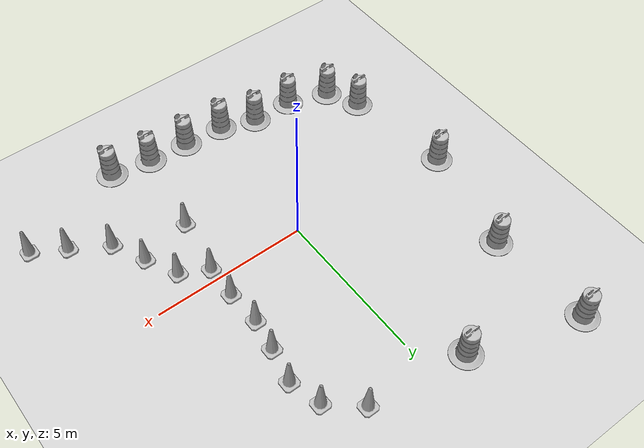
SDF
<sdf version="1.7">
 <world name="default">
  <light name="sun" type="directional">
   <pose>0 0 10 0 -0 0</pose>
   <diffuse>0.8 0.8 0.8 1</diffuse>
   <specular>0.2 0.2 0.2 1</specular>
   <attenuation>
    <range>1000</range>
    <constant>0.9</constant>
    <linear>0.01</linear>
    <quadratic>0.001</quadratic>
   </attenuation>
   <direction>-0.5 0.1 -0.9</direction>
   <spot><inner_angle>0</inner_angle><outer_angle>0</outer_angle><falloff>0</falloff></spot>
  </light>
  <model name="ground_plane">
   <static>1</static>
   <link name="link">
    <collision name="collision">
     <geometry><plane><normal>0 0 1</normal><size>100 100</size></plane></geometry>
     <surface><friction><ode><mu>100</mu><mu2>50</mu2></ode></friction></surface>
    </collision>
    <visual name="visual">
     <cast_shadows>0</cast_shadows>
     <geometry><plane><normal>0 0 1</normal><size>100 100</size></plane></geometry>
     <material>
      <script><uri>file://media/materials/scripts/gazebo.material</uri><name>Gazebo/Grey</name></script>
     </material>
    </visual>
   </link>
  </model>
  <gravity>0 0 -9.8</gravity>
  <magnetic_field>6e-06 2.3e-05 -4.2e-05</magnetic_field>
  <atmosphere type="adiabatic"/>
  <physics type="ode">
   <max_step_size>0.001</max_step_size>
   <real_time_factor>1</real_time_factor>
   <real_time_update_rate>1000</real_time_update_rate>
  </physics>
  <scene><ambient>0.4 0.4 0.4 1</ambient><background>0.7 0.7 0.7 1</background><shadows>1</shadows></scene>
  <audio><device>default</device></audio>
  <spherical_coordinates>
   <surface_model>EARTH_WGS84</surface_model>
   <latitude_deg>0</latitude_deg>
   <longitude_deg>0</longitude_deg>
   <elevation>0</elevation>
   <heading_deg>0</heading_deg>
  </spherical_coordinates>
  <model name="Construction Barrel">
   <link name="link">
    <inertial>
     <pose>0 0 0.4 0 -0 0</pose>
     <mass>500</mass>
     <inertia><ixx>51.2096</ixx><iyy>51.2096</iyy><izz>25</izz><ixy>0</ixy><ixz>0</ixz><iyz>0</iyz></inertia>
    </inertial>
    <collision name="collision">
     <geometry><mesh><uri>model://construction_barrel/meshes/construction_barrel.dae</uri></mesh></geometry>
    </collision>
    <visual name="visual">
     <geometry><mesh><uri>model://construction_barrel/meshes/construction_barrel.dae</uri></mesh></geometry>
    </visual>
   </link>
   <pose>-5.33773 0.426072 -3e-06 -6e-06 -5e-06 -3.6e-05</pose>
  </model>
  <model name="Construction Barrel_clone">
   <link name="link">
    <inertial>
     <pose>0 0 0.4 0 -0 0</pose>
     <mass>500</mass>
     <inertia><ixx>51.2096</ixx><iyy>51.2096</iyy><izz>25</izz><ixy>0</ixy><ixz>0</ixz><iyz>0</iyz></inertia>
    </inertial>
    <collision name="collision">
     <geometry><mesh><uri>model://construction_barrel/meshes/construction_barrel.dae</uri></mesh></geometry>
    </collision>
    <visual name="visual">
     <geometry><mesh><uri>model://construction_barrel/meshes/construction_barrel.dae</uri></mesh></geometry>
    </visual>
   </link>
   <pose>-4.52757 3.99995 -3e-06 -6e-06 -5e-06 -3.1e-05</pose>
  </model>
  <model name="Construction Barrel_clone_0">
   <link name="link">
    <inertial>
     <pose>0 0 0.4 0 -0 0</pose>
     <mass>500</mass>
     <inertia><ixx>51.2096</ixx><iyy>51.2096</iyy><izz>25</izz><ixy>0</ixy><ixz>0</ixz><iyz>0</iyz></inertia>
    </inertial>
    <collision name="collision">
     <geometry><mesh><uri>model://construction_barrel/meshes/construction_barrel.dae</uri></mesh></geometry>
    </collision>
    <visual name="visual">
     <geometry><mesh><uri>model://construction_barrel/meshes/construction_barrel.dae</uri></mesh></geometry>
    </visual>
   </link>
   <pose>-1.16073 6.2419 -3e-06 -6e-06 -5e-06 -3.6e-05</pose>
  </model>
  <model name="Construction Barrel_clone_1">
   <link name="link">
    <inertial>
     <pose>0 0 0.4 0 -0 0</pose>
     <mass>500</mass>
     <inertia><ixx>51.2096</ixx><iyy>51.2096</iyy><izz>25</izz><ixy>0</ixy><ixz>0</ixz><iyz>0</iyz></inertia>
    </inertial>
    <collision name="collision">
     <geometry><mesh><uri>model://construction_barrel/meshes/construction_barrel.dae</uri></mesh></geometry>
    </collision>
    <visual name="visual">
     <geometry><mesh><uri>model://construction_barrel/meshes/construction_barrel.dae</uri></mesh></geometry>
    </visual>
   </link>
   <pose>-4.66153 7.3693 0 0 0 -2.9e-05</pose>
  </model>
  <model name="Construction Cone">
   <link name="link">
    <collision name="collision">
     <geometry>
      <mesh><scale>10 10 10</scale><uri>model://construction_cone/meshes/construction_cone.dae</uri></mesh>
     </geometry>
    </collision>
    <visual name="visual">
     <geometry>
      <mesh><scale>10 10 10</scale><uri>model://construction_cone/meshes/construction_cone.dae</uri></mesh>
     </geometry>
    </visual>
    <inertial>
     <inertia><ixx>1</ixx><ixy>0</ixy><ixz>0</ixz><iyy>1</iyy><iyz>0</iyz><izz>1</izz></inertia>
     <mass>1</mass>
    </inertial>
   </link>
   <pose>2.63502 -2.26333 -0 0 -0 0</pose>
  </model>
  <model name="Construction Cone_clone">
   <link name="link">
    <collision name="collision">
     <geometry>
      <mesh><scale>10 10 10</scale><uri>model://construction_cone/meshes/construction_cone.dae</uri></mesh>
     </geometry>
    </collision>
    <visual name="visual">
     <geometry>
      <mesh><scale>10 10 10</scale><uri>model://construction_cone/meshes/construction_cone.dae</uri></mesh>
     </geometry>
    </visual>
    <inertial>
     <inertia><ixx>1</ixx><ixy>0</ixy><ixz>0</ixz><iyy>1</iyy><iyz>0</iyz><izz>1</izz></inertia>
     <mass>1</mass>
    </inertial>
   </link>
   <pose>2.93178 -0.389019 -0 -0 -0 -0</pose>
  </model>
  <model name="Construction Cone_clone_0">
   <link name="link">
    <collision name="collision">
     <geometry>
      <mesh><scale>10 10 10</scale><uri>model://construction_cone/meshes/construction_cone.dae</uri></mesh>
     </geometry>
    </collision>
    <visual name="visual">
     <geometry>
      <mesh><scale>10 10 10</scale><uri>model://construction_cone/meshes/construction_cone.dae</uri></mesh>
     </geometry>
    </visual>
    <inertial>
     <inertia><ixx>1</ixx><ixy>0</ixy><ixz>0</ixz><iyy>1</iyy><iyz>0</iyz><izz>1</izz></inertia>
     <mass>1</mass>
    </inertial>
   </link>
   <pose>2.90376 1.85673 -0 0 -0 0</pose>
  </model>
  <model name="Construction Cone_clone_1">
   <link name="link">
    <collision name="collision">
     <geometry>
      <mesh><scale>10 10 10</scale><uri>model://construction_cone/meshes/construction_cone.dae</uri></mesh>
     </geometry>
    </collision>
    <visual name="visual">
     <geometry>
      <mesh><scale>10 10 10</scale><uri>model://construction_cone/meshes/construction_cone.dae</uri></mesh>
     </geometry>
    </visual>
    <inertial>
     <inertia><ixx>1</ixx><ixy>0</ixy><ixz>0</ixz><iyy>1</iyy><iyz>0</iyz><izz>1</izz></inertia>
     <mass>1</mass>
    </inertial>
   </link>
   <pose>3.28591 3.98359 -0 0 -0 0</pose>
  </model>
  <model name="Construction Barrel_clone_2">
   <link name="link">
    <inertial>
     <pose>0 0 0.4 0 -0 0</pose>
     <mass>500</mass>
     <inertia><ixx>51.2096</ixx><iyy>51.2096</iyy><izz>25</izz><ixy>0</ixy><ixz>0</ixz><iyz>0</iyz></inertia>
    </inertial>
    <collision name="collision">
     <geometry><mesh><uri>model://construction_barrel/meshes/construction_barrel.dae</uri></mesh></geometry>
    </collision>
    <visual name="visual">
     <geometry><mesh><uri>model://construction_barrel/meshes/construction_barrel.dae</uri></mesh></geometry>
    </visual>
   </link>
   <pose>-4.32472 -4.1141 -2e-06 7e-06 -4e-06 -2.8e-05</pose>
  </model>
  <model name="Construction Barrel_clone_3">
   <link name="link">
    <inertial>
     <pose>0 0 0.4 0 -0 0</pose>
     <mass>500</mass>
     <inertia><ixx>51.2096</ixx><iyy>51.2096</iyy><izz>25</izz><ixy>0</ixy><ixz>0</ixz><iyz>0</iyz></inertia>
    </inertial>
    <collision name="collision">
     <geometry><mesh><uri>model://construction_barrel/meshes/construction_barrel.dae</uri></mesh></geometry>
    </collision>
    <visual name="visual">
     <geometry><mesh><uri>model://construction_barrel/meshes/construction_barrel.dae</uri></mesh></geometry>
    </visual>
   </link>
   <pose>-1.63254 -4.58664 -1e-06 4e-06 -1e-06 -3.3e-05</pose>
  </model>
  <model name="Construction Barrel_clone_4">
   <link name="link">
    <inertial>
     <pose>0 0 0.4 0 -0 0</pose>
     <mass>500</mass>
     <inertia><ixx>51.2096</ixx><iyy>51.2096</iyy><izz>25</izz><ixy>0</ixy><ixz>0</ixz><iyz>0</iyz></inertia>
    </inertial>
    <collision name="collision">
     <geometry><mesh><uri>model://construction_barrel/meshes/construction_barrel.dae</uri></mesh></geometry>
    </collision>
    <visual name="visual">
     <geometry><mesh><uri>model://construction_barrel/meshes/construction_barrel.dae</uri></mesh></geometry>
    </visual>
   </link>
   <pose>0.824505 -5.07221 -2e-06 7e-06 -4e-06 -2.9e-05</pose>
  </model>
  <model name="Construction Barrel_clone_2_clone">
   <link name="link">
    <inertial>
     <pose>0 0 0.4 0 -0 0</pose>
     <mass>500</mass>
     <inertia><ixx>51.2096</ixx><iyy>51.2096</iyy><izz>25</izz><ixy>0</ixy><ixz>0</ixz><iyz>0</iyz></inertia>
    </inertial>
    <collision name="collision">
     <geometry><mesh><uri>model://construction_barrel/meshes/construction_barrel.dae</uri></mesh></geometry>
    </collision>
    <visual name="visual">
     <geometry><mesh><uri>model://construction_barrel/meshes/construction_barrel.dae</uri></mesh></geometry>
    </visual>
   </link>
   <pose>-2.98353 -4.55397 -2e-06 7e-06 -2e-06 -3.8e-05</pose>
  </model>
  <model name="Construction Barrel_clone_2_clone_0">
   <link name="link">
    <inertial>
     <pose>0 0 0.4 0 -0 0</pose>
     <mass>500</mass>
     <inertia><ixx>51.2096</ixx><iyy>51.2096</iyy><izz>25</izz><ixy>0</ixy><ixz>0</ixz><iyz>0</iyz></inertia>
    </inertial>
    <collision name="collision">
     <geometry><mesh><uri>model://construction_barrel/meshes/construction_barrel.dae</uri></mesh></geometry>
    </collision>
    <visual name="visual">
     <geometry><mesh><uri>model://construction_barrel/meshes/construction_barrel.dae</uri></mesh></geometry>
    </visual>
   </link>
   <pose>-0.50047 -4.97564 -2e-06 7e-06 -2e-06 -3.7e-05</pose>
  </model>
  <model name="Construction Barrel_clone_2_clone_1">
   <link name="link">
    <inertial>
     <pose>0 0 0.4 0 -0 0</pose>
     <mass>500</mass>
     <inertia><ixx>51.2096</ixx><iyy>51.2096</iyy><izz>25</izz><ixy>0</ixy><ixz>0</ixz><iyz>0</iyz></inertia>
    </inertial>
    <collision name="collision">
     <geometry><mesh><uri>model://construction_barrel/meshes/construction_barrel.dae</uri></mesh></geometry>
    </collision>
    <visual name="visual">
     <geometry><mesh><uri>model://construction_barrel/meshes/construction_barrel.dae</uri></mesh></geometry>
    </visual>
   </link>
   <pose>2.12865 -5.16749 -2e-06 7e-06 -2e-06 -3.6e-05</pose>
  </model>
  <model name="Construction Barrel_clone_2_clone_2">
   <link name="link">
    <inertial>
     <pose>0 0 0.4 0 -0 0</pose>
     <mass>500</mass>
     <inertia><ixx>51.2096</ixx><iyy>51.2096</iyy><izz>25</izz><ixy>0</ixy><ixz>0</ixz><iyz>0</iyz></inertia>
    </inertial>
    <collision name="collision">
     <geometry><mesh><uri>model://construction_barrel/meshes/construction_barrel.dae</uri></mesh></geometry>
    </collision>
    <visual name="visual">
     <geometry><mesh><uri>model://construction_barrel/meshes/construction_barrel.dae</uri></mesh></geometry>
    </visual>
   </link>
   <pose>-4.84292 -3.07001 -2e-06 7e-06 -2e-06 -3.5e-05</pose>
  </model>
  <model name="Construction Barrel_clone_2_clone_3">
   <link name="link">
    <inertial>
     <pose>0 0 0.4 0 -0 0</pose>
     <mass>500</mass>
     <inertia><ixx>51.2096</ixx><iyy>51.2096</iyy><izz>25</izz><ixy>0</ixy><ixz>0</ixz><iyz>0</iyz></inertia>
    </inertial>
    <collision name="collision">
     <geometry><mesh><uri>model://construction_barrel/meshes/construction_barrel.dae</uri></mesh></geometry>
    </collision>
    <visual name="visual">
     <geometry><mesh><uri>model://construction_barrel/meshes/construction_barrel.dae</uri></mesh></geometry>
    </visual>
   </link>
   <pose>3.43774 -5.39397 -0 0 0 -3.5e-05</pose>
  </model>
  <model name="Construction Cone_clone_2">
   <link name="link">
    <collision name="collision">
     <geometry>
      <mesh><scale>10 10 10</scale><uri>model://construction_cone/meshes/construction_cone.dae</uri></mesh>
     </geometry>
    </collision>
    <visual name="visual">
     <geometry>
      <mesh><scale>10 10 10</scale><uri>model://construction_cone/meshes/construction_cone.dae</uri></mesh>
     </geometry>
    </visual>
    <inertial>
     <inertia><ixx>1</ixx><ixy>0</ixy><ixz>0</ixz><iyy>1</iyy><iyz>0</iyz><izz>1</izz></inertia>
     <mass>1</mass>
    </inertial>
   </link>
   <pose>2.9612 0.699633 0 -0 -0 -0</pose>
  </model>
  <model name="Construction Cone_clone_3">
   <link name="link">
    <collision name="collision">
     <geometry>
      <mesh><scale>10 10 10</scale><uri>model://construction_cone/meshes/construction_cone.dae</uri></mesh>
     </geometry>
    </collision>
    <visual name="visual">
     <geometry>
      <mesh><scale>10 10 10</scale><uri>model://construction_cone/meshes/construction_cone.dae</uri></mesh>
     </geometry>
    </visual>
    <inertial>
     <inertia><ixx>1</ixx><ixy>0</ixy><ixz>0</ixz><iyy>1</iyy><iyz>0</iyz><izz>1</izz></inertia>
     <mass>1</mass>
    </inertial>
   </link>
   <pose>3.06339 2.87489 -0 0 -1e-06 0</pose>
  </model>
  <model name="Construction Cone_clone_4">
   <link name="link">
    <collision name="collision">
     <geometry>
      <mesh><scale>10 10 10</scale><uri>model://construction_cone/meshes/construction_cone.dae</uri></mesh>
     </geometry>
    </collision>
    <visual name="visual">
     <geometry>
      <mesh><scale>10 10 10</scale><uri>model://construction_cone/meshes/construction_cone.dae</uri></mesh>
     </geometry>
    </visual>
    <inertial>
     <inertia><ixx>1</ixx><ixy>0</ixy><ixz>0</ixz><iyy>1</iyy><iyz>0</iyz><izz>1</izz></inertia>
     <mass>1</mass>
    </inertial>
   </link>
   <pose>3.8023 -0.845628 -0 0 -1e-06 0</pose>
  </model>
  <model name="Construction Cone_clone_5">
   <link name="link">
    <collision name="collision">
     <geometry>
      <mesh><scale>10 10 10</scale><uri>model://construction_cone/meshes/construction_cone.dae</uri></mesh>
     </geometry>
    </collision>
    <visual name="visual">
     <geometry>
      <mesh><scale>10 10 10</scale><uri>model://construction_cone/meshes/construction_cone.dae</uri></mesh>
     </geometry>
    </visual>
    <inertial>
     <inertia><ixx>1</ixx><ixy>0</ixy><ixz>0</ixz><iyy>1</iyy><iyz>0</iyz><izz>1</izz></inertia>
     <mass>1</mass>
    </inertial>
   </link>
   <pose>4.31524 -1.85228 -0 -0 -0 -0</pose>
  </model>
  <model name="Construction Cone_clone_6">
   <link name="link">
    <collision name="collision">
     <geometry>
      <mesh><scale>10 10 10</scale><uri>model://construction_cone/meshes/construction_cone.dae</uri></mesh>
     </geometry>
    </collision>
    <visual name="visual">
     <geometry>
      <mesh><scale>10 10 10</scale><uri>model://construction_cone/meshes/construction_cone.dae</uri></mesh>
     </geometry>
    </visual>
    <inertial>
     <inertia><ixx>1</ixx><ixy>0</ixy><ixz>0</ixz><iyy>1</iyy><iyz>0</iyz><izz>1</izz></inertia>
     <mass>1</mass>
    </inertial>
   </link>
   <pose>4.83292 -2.91202 0 -0 -0 -0</pose>
  </model>
  <model name="Construction Cone_clone_7">
   <link name="link">
    <collision name="collision">
     <geometry>
      <mesh><scale>10 10 10</scale><uri>model://construction_cone/meshes/construction_cone.dae</uri></mesh>
     </geometry>
    </collision>
    <visual name="visual">
     <geometry>
      <mesh><scale>10 10 10</scale><uri>model://construction_cone/meshes/construction_cone.dae</uri></mesh>
     </geometry>
    </visual>
    <inertial>
     <inertia><ixx>1</ixx><ixy>0</ixy><ixz>0</ixz><iyy>1</iyy><iyz>0</iyz><izz>1</izz></inertia>
     <mass>1</mass>
    </inertial>
   </link>
   <pose>5.96882 -3.59563 -0 0 -1e-06 0</pose>
  </model>
  <model name="Construction Cone_clone_8">
   <link name="link">
    <collision name="collision">
     <geometry>
      <mesh><scale>10 10 10</scale><uri>model://construction_cone/meshes/construction_cone.dae</uri></mesh>
     </geometry>
    </collision>
    <visual name="visual">
     <geometry>
      <mesh><scale>10 10 10</scale><uri>model://construction_cone/meshes/construction_cone.dae</uri></mesh>
     </geometry>
    </visual>
    <inertial>
     <inertia><ixx>1</ixx><ixy>0</ixy><ixz>0</ixz><iyy>1</iyy><iyz>0</iyz><izz>1</izz></inertia>
     <mass>1</mass>
    </inertial>
   </link>
   <pose>6.96415 -4.1883 0 -1e-06 0 0</pose>
  </model>
  <model name="Construction Cone_clone_9">
   <link name="link">
    <collision name="collision">
     <geometry>
      <mesh><scale>10 10 10</scale><uri>model://construction_cone/meshes/construction_cone.dae</uri></mesh>
     </geometry>
    </collision>
    <visual name="visual">
     <geometry>
      <mesh><scale>10 10 10</scale><uri>model://construction_cone/meshes/construction_cone.dae</uri></mesh>
     </geometry>
    </visual>
    <inertial>
     <inertia><ixx>1</ixx><ixy>0</ixy><ixz>0</ixz><iyy>1</iyy><iyz>0</iyz><izz>1</izz></inertia>
     <mass>1</mass>
    </inertial>
   </link>
   <pose>3 5 -0 0 -1e-06 0</pose>
  </model>
  <model name="Construction Cone_clone_10">
   <link name="link">
    <collision name="collision">
     <geometry>
      <mesh><scale>10 10 10</scale><uri>model://construction_cone/meshes/construction_cone.dae</uri></mesh>
     </geometry>
    </collision>
    <visual name="visual">
     <geometry>
      <mesh><scale>10 10 10</scale><uri>model://construction_cone/meshes/construction_cone.dae</uri></mesh>
     </geometry>
    </visual>
    <inertial>
     <inertia><ixx>1</ixx><ixy>0</ixy><ixz>0</ixz><iyy>1</iyy><iyz>0</iyz><izz>1</izz></inertia>
     <mass>1</mass>
    </inertial>
   </link>
   <pose>2.03234 5.83011 -0 0 -0 0</pose>
  </model>
 </world>
</sdf>
